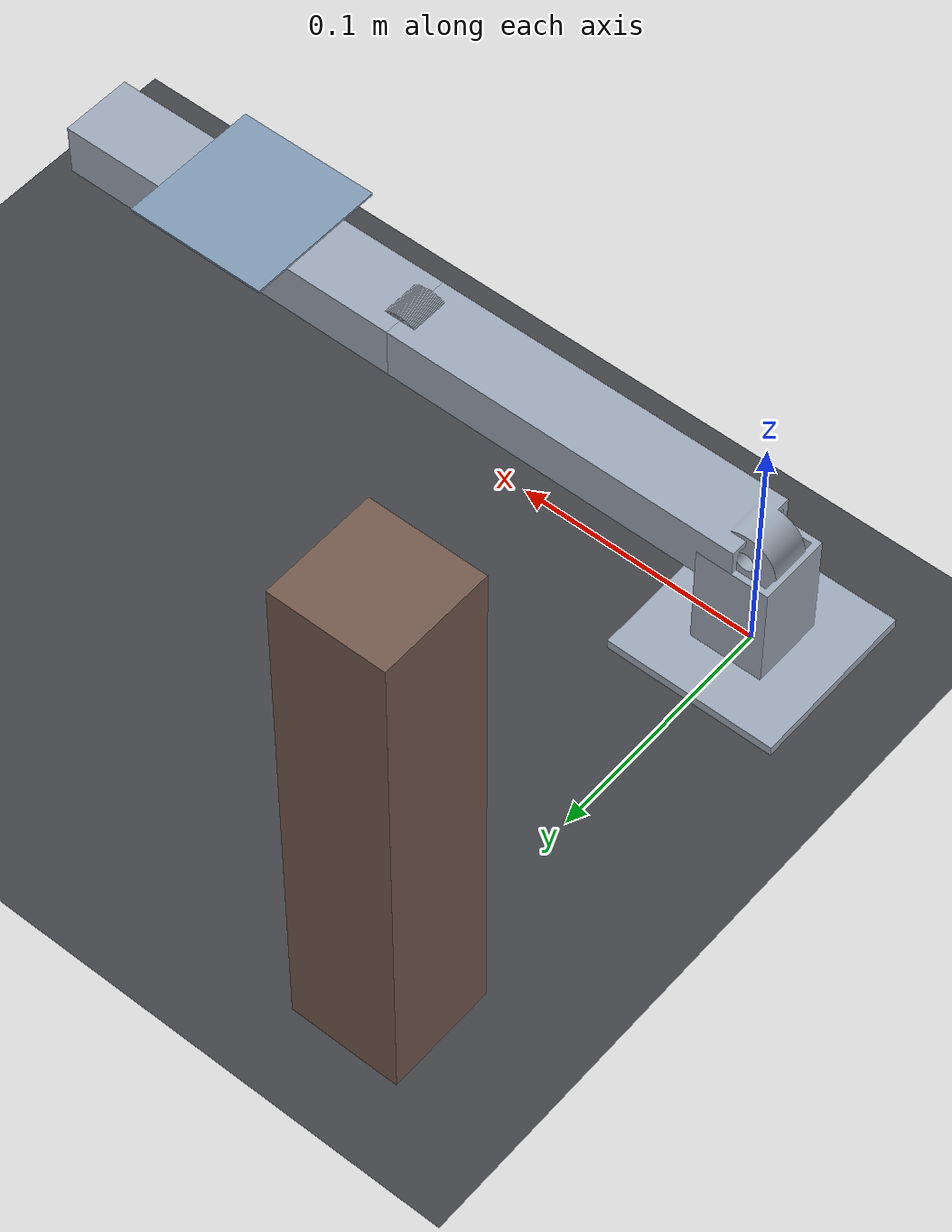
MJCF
<?xml version="1.0"?>
<!-- GENERATED FILE -- DO NOT EDIT.
     Source:    config/arm.toml
     Generator: src/arm/models.py  (run `just models`)
     Edits here are silently discarded on the next regeneration. -->
<mujoco model="learn-arm-3dof">
  <compiler angle="radian" meshdir="../../cad/export" texturedir="../../assets/markers"/>
  <asset>
    <mesh name="base_mesh" file="base.stl"/>
    <mesh name="upper_arm_mesh" file="upper_arm.stl"/>
    <mesh name="forearm_mesh" file="forearm.stl"/>
    <texture name="marker_forearm_tag" type="2d" file="forearm_tag.png"/>
    <material name="marker_forearm_tag_material" texture="marker_forearm_tag" texuniform="false" specular="0" shininess="0"/>
  </asset>
  <option timestep="0.001" gravity="0 0 -9.81" integrator="implicitfast"/>
  <default>
    <geom rgba="0.5 0.6 0.7 1" contype="1" conaffinity="1"/>
  </default>
  <worldbody>
    <light pos="0 0 1.5" dir="0 0 -1" diffuse="0.8 0.8 0.8"/>
    <light pos="0.6 0.4 0.6" dir="-0.6 -0.4 -0.6" diffuse="0.5 0.5 0.5"/>
    <geom name="floor" type="plane" size="1 1 0.05" rgba="0.25 0.26 0.28 1"/>
    <camera name="workspace" pos="0.42 0.26 0.34" xyaxes="-0.399585421 0.916695965 0 -0.435951368 -0.190030083 0.879678903" fovy="45"/>
    <geom name="obstacle_post" type="box" pos="0 0.19 0.11" size="0.022 0.022 0.11" rgba="0.45 0.35 0.30 1"/>
    <body name="base" pos="0 0 0">
      <joint name="base_yaw" type="hinge" axis="0 0 1" range="-3.0543 3.0543" armature="0.01" damping="0.05" frictionloss="0"/>
      <inertial pos="0 0 0.0339219" mass="0.101143" diaginertia="7.22714e-05 6.58364e-05 3.86065e-05"/>
      <geom name="base_collision" type="box" pos="0 0 0.025" size="0.015 0.015 0.025" group="3" rgba="0.8 0.3 0.3 0.25"/>
      <geom name="base_visual" type="mesh" mesh="base_mesh" contype="0" conaffinity="0" group="2" rgba="0.62 0.66 0.72 1"/>
      <body name="upper_arm" pos="0 0 0.05">
        <joint name="shoulder_pitch" type="hinge" axis="0 -1 0" range="-1.5708 1.5708" armature="0.01" damping="0.05" frictionloss="0"/>
        <inertial pos="0.0892845 0 0" mass="0.0945081" diaginertia="1.35365e-05 0.000298315 0.00030148"/>
        <geom name="upper_arm_collision" type="box" pos="0.075 0 0" size="0.075 0.015 0.011" group="3" rgba="0.8 0.3 0.3 0.25"/>
        <geom name="upper_arm_visual" type="mesh" mesh="upper_arm_mesh" contype="0" conaffinity="0" group="2" rgba="0.62 0.66 0.72 1"/>
        <body name="forearm" pos="0.15 0 0">
          <joint name="elbow_pitch" type="hinge" axis="0 -1 0" range="-2.618 2.618" armature="0.004" damping="0.02" frictionloss="0"/>
          <inertial pos="0.0656355 0 0" mass="0.0699903" diaginertia="1.07128e-05 0.000162768 0.000165244"/>
          <geom name="forearm_collision" type="box" pos="0.075 0 0" size="0.075 0.015 0.011" group="3" rgba="0.8 0.3 0.3 0.25"/>
          <geom name="forearm_visual" type="mesh" mesh="forearm_mesh" contype="0" conaffinity="0" group="2" rgba="0.62 0.66 0.72 1"/>
          <geom name="marker_forearm_tag" type="box" pos="0.075 0 0.012" euler="0 0 0" size="0.03 0.03 0.0005" material="marker_forearm_tag_material" contype="0" conaffinity="0" group="2"/>
          <site name="ee" pos="0.15 0 0" size="0.006"/>
        </body>
      </body>
    </body>
  </worldbody>
  <actuator>
    <motor name="base_yaw_motor" joint="base_yaw" ctrlrange="-0.6 0.6" gear="1"/>
    <motor name="shoulder_pitch_motor" joint="shoulder_pitch" ctrlrange="-0.6 0.6" gear="1"/>
    <motor name="elbow_pitch_motor" joint="elbow_pitch" ctrlrange="-0.208 0.208" gear="1"/>
  </actuator>
  <contact>
    <exclude body1="world" body2="base"/>
  </contact>
  <sensor>
    <jointpos name="base_yaw_pos" joint="base_yaw"/>
    <jointvel name="base_yaw_vel" joint="base_yaw"/>
    <jointpos name="shoulder_pitch_pos" joint="shoulder_pitch"/>
    <jointvel name="shoulder_pitch_vel" joint="shoulder_pitch"/>
    <jointpos name="elbow_pitch_pos" joint="elbow_pitch"/>
    <jointvel name="elbow_pitch_vel" joint="elbow_pitch"/>
    <framepos name="ee_pos" objtype="site" objname="ee"/>
  </sensor>
</mujoco>
